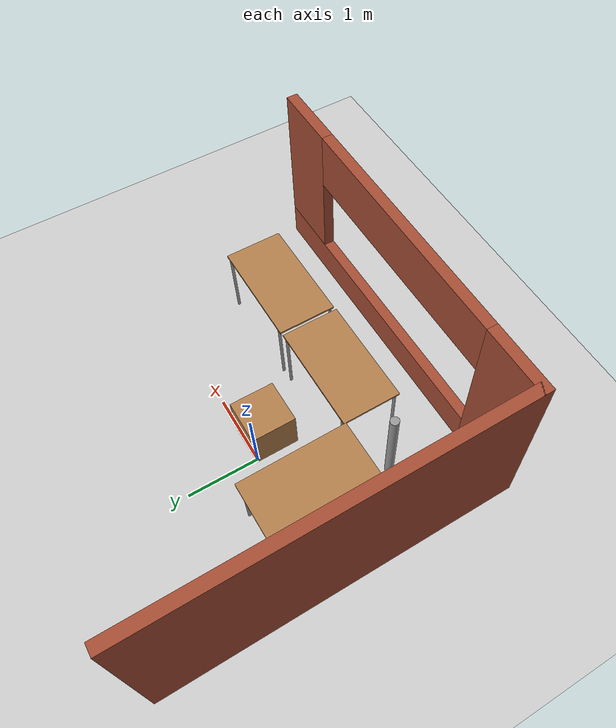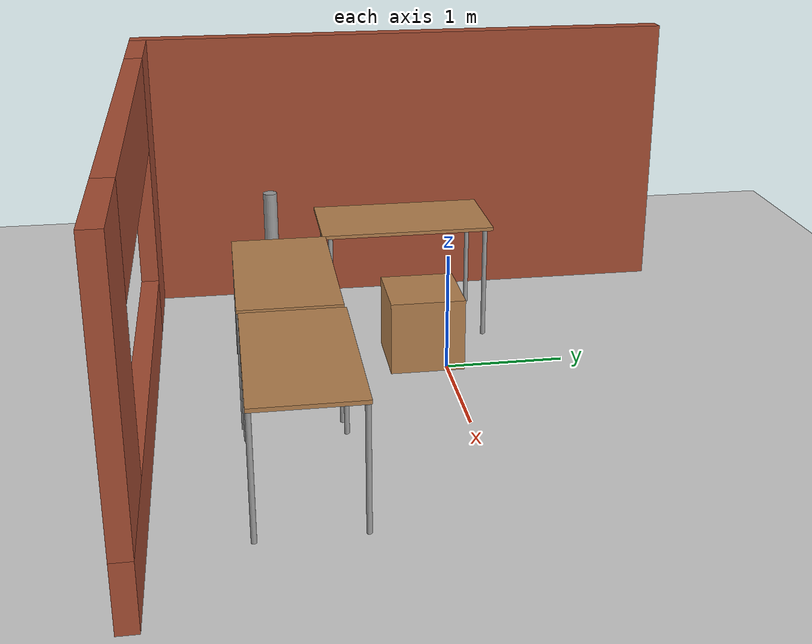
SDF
<sdf version="1.7">
 <world name="default">
  <light name="sun" type="directional">
   <pose>0 0 10 0 -0 0</pose>
   <diffuse>0.8 0.8 0.8 1</diffuse>
   <specular>0.2 0.2 0.2 1</specular>
   <attenuation>
    <range>1000</range>
    <constant>0.9</constant>
    <linear>0.01</linear>
    <quadratic>0.001</quadratic>
   </attenuation>
   <direction>-0.5 0.1 -0.9</direction>
   <spot><inner_angle>0</inner_angle><outer_angle>0</outer_angle><falloff>0</falloff></spot>
  </light>
  <model name="ground_plane">
   <static>1</static>
   <link name="link">
    <collision name="collision">
     <geometry><plane><normal>0 0 1</normal><size>100 100</size></plane></geometry>
     <surface>
      <contact><collide_bitmask>65535</collide_bitmask></contact>
      <friction><ode><mu>100</mu><mu2>50</mu2></ode></friction>
     </surface>
    </collision>
    <visual name="visual">
     <cast_shadows>0</cast_shadows>
     <geometry><plane><normal>0 0 1</normal><size>100 100</size></plane></geometry>
     <material>
      <script><uri>file://media/materials/scripts/gazebo.material</uri><name>Gazebo/Grey</name></script>
     </material>
    </visual>
   </link>
  </model>
  <gravity>0 0 -9.8</gravity>
  <magnetic_field>6e-06 2.3e-05 -4.2e-05</magnetic_field>
  <atmosphere type="adiabatic"/>
  <physics type="ode">
   <max_step_size>0.001</max_step_size>
   <real_time_factor>1</real_time_factor>
   <real_time_update_rate>1000</real_time_update_rate>
  </physics>
  <scene><ambient>0.4 0.4 0.4 1</ambient><background>0.7 0.7 0.7 1</background><shadows>1</shadows></scene>
  <spherical_coordinates>
   <surface_model>EARTH_WGS84</surface_model>
   <latitude_deg>0</latitude_deg>
   <longitude_deg>0</longitude_deg>
   <elevation>0</elevation>
   <heading_deg>0</heading_deg>
  </spherical_coordinates>
  <model name="TheLab2">
   <pose>0.593337 -0.093215 0 0 -0 0</pose>
   <link name="Wall_11">
    <collision name="Wall_11_Collision">
     <geometry><box><size>4.93725 0.15 2.5</size></box></geometry>
     <pose>0 0 1.25 0 -0 0</pose>
    </collision>
    <visual name="Wall_11_Visual">
     <pose>0 0 1.25 0 -0 0</pose>
     <geometry><box><size>4.93725 0.15 2.5</size></box></geometry>
     <material>
      <script><uri>file://media/materials/scripts/gazebo.material</uri><name>Gazebo/Bricks</name></script>
      <ambient>1 1 1 1</ambient>
     </material>
     <meta><layer>0</layer></meta>
    </visual>
    <pose>-2.55 0 0 0 -0 -1.5708</pose>
   </link>
   <link name="Wall_12">
    <pose>0 -2.39363 0 0 -0 0</pose>
    <visual name="Wall_12_Visual_0">
     <pose>-2.15232 0 1.25 0 -0 0</pose>
     <geometry><box><size>0.945349 0.15 2.5</size></box></geometry>
     <material>
      <script><uri>file://media/materials/scripts/gazebo.material</uri><name>Gazebo/Bricks</name></script>
      <ambient>1 1 1 1</ambient>
     </material>
     <meta><layer>0</layer></meta>
    </visual>
    <collision name="Wall_12_Collision_0">
     <geometry><box><size>0.945349 0.15 2.5</size></box></geometry>
     <pose>-2.15232 0 1.25 0 -0 0</pose>
    </collision>
    <visual name="Wall_12_Visual_1">
     <pose>0.472675 0 0.25 0 -0 0</pose>
     <geometry><box><size>4.30465 0.15 0.5</size></box></geometry>
     <material>
      <script><uri>file://media/materials/scripts/gazebo.material</uri><name>Gazebo/Bricks</name></script>
      <ambient>1 1 1 1</ambient>
     </material>
     <meta><layer>0</layer></meta>
    </visual>
    <collision name="Wall_12_Collision_1">
     <geometry><box><size>4.30465 0.15 0.5</size></box></geometry>
     <pose>0.472675 0 0.25 0 -0 0</pose>
    </collision>
    <visual name="Wall_12_Visual_2">
     <pose>2.17568 0 1.5 0 -0 0</pose>
     <geometry><box><size>0.898651 0.15 2</size></box></geometry>
     <material>
      <script><uri>file://media/materials/scripts/gazebo.material</uri><name>Gazebo/Bricks</name></script>
      <ambient>1 1 1 1</ambient>
     </material>
     <meta><layer>0</layer></meta>
    </visual>
    <collision name="Wall_12_Collision_2">
     <geometry><box><size>0.898651 0.15 2</size></box></geometry>
     <pose>2.17568 0 1.5 0 -0 0</pose>
    </collision>
    <visual name="Wall_12_Visual_3">
     <pose>0.023349 0 2.1 0 -0 0</pose>
     <geometry><box><size>3.406 0.15 0.8</size></box></geometry>
     <material>
      <script><uri>file://media/materials/scripts/gazebo.material</uri><name>Gazebo/Bricks</name></script>
      <ambient>1 1 1 1</ambient>
     </material>
     <meta><layer>0</layer></meta>
    </visual>
    <collision name="Wall_12_Collision_3">
     <geometry><box><size>3.406 0.15 0.8</size></box></geometry>
     <pose>0.023349 0 2.1 0 -0 0</pose>
    </collision>
   </link>
   <static>1</static>
  </model>
  <model name="table">
   <static>1</static>
   <link name="link">
    <collision name="surface">
     <pose>0 0 1 0 -0 0</pose>
     <geometry><box><size>1.5 0.8 0.03</size></box></geometry>
     <surface><friction><ode><mu>0.6</mu><mu2>0.6</mu2></ode></friction></surface>
    </collision>
    <visual name="visual1">
     <pose>0 0 1 0 -0 0</pose>
     <geometry><box><size>1.5 0.8 0.03</size></box></geometry>
     <material>
      <script><uri>file://media/materials/scripts/gazebo.material</uri><name>Gazebo/Wood</name></script>
     </material>
    </visual>
    <collision name="front_left_leg">
     <pose>0.68 0.38 0.5 0 -0 0</pose>
     <geometry><cylinder><radius>0.02</radius><length>1</length></cylinder></geometry>
    </collision>
    <visual name="front_left_leg">
     <pose>0.68 0.38 0.5 0 -0 0</pose>
     <geometry><cylinder><radius>0.02</radius><length>1</length></cylinder></geometry>
     <material>
      <script><uri>file://media/materials/scripts/gazebo.material</uri><name>Gazebo/Grey</name></script>
     </material>
    </visual>
    <collision name="front_right_leg">
     <pose>0.68 -0.38 0.5 0 -0 0</pose>
     <geometry><cylinder><radius>0.02</radius><length>1</length></cylinder></geometry>
    </collision>
    <visual name="front_right_leg">
     <pose>0.68 -0.38 0.5 0 -0 0</pose>
     <geometry><cylinder><radius>0.02</radius><length>1</length></cylinder></geometry>
     <material>
      <script><uri>file://media/materials/scripts/gazebo.material</uri><name>Gazebo/Grey</name></script>
     </material>
    </visual>
    <collision name="back_right_leg">
     <pose>-0.68 -0.38 0.5 0 -0 0</pose>
     <geometry><cylinder><radius>0.02</radius><length>1</length></cylinder></geometry>
    </collision>
    <visual name="back_right_leg">
     <pose>-0.68 -0.38 0.5 0 -0 0</pose>
     <geometry><cylinder><radius>0.02</radius><length>1</length></cylinder></geometry>
     <material>
      <script><uri>file://media/materials/scripts/gazebo.material</uri><name>Gazebo/Grey</name></script>
     </material>
    </visual>
    <collision name="back_left_leg">
     <pose>-0.68 0.38 0.5 0 -0 0</pose>
     <geometry><cylinder><radius>0.02</radius><length>1</length></cylinder></geometry>
    </collision>
    <visual name="back_left_leg">
     <pose>-0.68 0.38 0.5 0 -0 0</pose>
     <geometry><cylinder><radius>0.02</radius><length>1</length></cylinder></geometry>
     <material>
      <script><uri>file://media/materials/scripts/gazebo.material</uri><name>Gazebo/Grey</name></script>
     </material>
    </visual>
   </link>
   <pose>0.154999 -1.35636 0 0 -0 0</pose>
  </model>
  <model name="table_clone">
   <static>1</static>
   <link name="link">
    <collision name="surface">
     <pose>0 0 1 0 -0 0</pose>
     <geometry><box><size>1.5 0.8 0.03</size></box></geometry>
     <surface><friction><ode><mu>0.6</mu><mu2>0.6</mu2></ode></friction></surface>
    </collision>
    <visual name="visual1">
     <pose>0 0 1 0 -0 0</pose>
     <geometry><box><size>1.5 0.8 0.03</size></box></geometry>
     <material>
      <script><uri>file://media/materials/scripts/gazebo.material</uri><name>Gazebo/Wood</name></script>
     </material>
    </visual>
    <collision name="front_left_leg">
     <pose>0.68 0.38 0.5 0 -0 0</pose>
     <geometry><cylinder><radius>0.02</radius><length>1</length></cylinder></geometry>
    </collision>
    <visual name="front_left_leg">
     <pose>0.68 0.38 0.5 0 -0 0</pose>
     <geometry><cylinder><radius>0.02</radius><length>1</length></cylinder></geometry>
     <material>
      <script><uri>file://media/materials/scripts/gazebo.material</uri><name>Gazebo/Grey</name></script>
     </material>
    </visual>
    <collision name="front_right_leg">
     <pose>0.68 -0.38 0.5 0 -0 0</pose>
     <geometry><cylinder><radius>0.02</radius><length>1</length></cylinder></geometry>
    </collision>
    <visual name="front_right_leg">
     <pose>0.68 -0.38 0.5 0 -0 0</pose>
     <geometry><cylinder><radius>0.02</radius><length>1</length></cylinder></geometry>
     <material>
      <script><uri>file://media/materials/scripts/gazebo.material</uri><name>Gazebo/Grey</name></script>
     </material>
    </visual>
    <collision name="back_right_leg">
     <pose>-0.68 -0.38 0.5 0 -0 0</pose>
     <geometry><cylinder><radius>0.02</radius><length>1</length></cylinder></geometry>
    </collision>
    <visual name="back_right_leg">
     <pose>-0.68 -0.38 0.5 0 -0 0</pose>
     <geometry><cylinder><radius>0.02</radius><length>1</length></cylinder></geometry>
     <material>
      <script><uri>file://media/materials/scripts/gazebo.material</uri><name>Gazebo/Grey</name></script>
     </material>
    </visual>
    <collision name="back_left_leg">
     <pose>-0.68 0.38 0.5 0 -0 0</pose>
     <geometry><cylinder><radius>0.02</radius><length>1</length></cylinder></geometry>
    </collision>
    <visual name="back_left_leg">
     <pose>-0.68 0.38 0.5 0 -0 0</pose>
     <geometry><cylinder><radius>0.02</radius><length>1</length></cylinder></geometry>
     <material>
      <script><uri>file://media/materials/scripts/gazebo.material</uri><name>Gazebo/Grey</name></script>
     </material>
    </visual>
   </link>
   <pose>-1.00165 -0.236267 0 0 0 -1.5642</pose>
  </model>
  <model name="table_clone_0">
   <static>1</static>
   <link name="link">
    <collision name="surface">
     <pose>0 0 1 0 -0 0</pose>
     <geometry><box><size>1.5 0.8 0.03</size></box></geometry>
     <surface><friction><ode><mu>0.6</mu><mu2>0.6</mu2></ode></friction></surface>
    </collision>
    <visual name="visual1">
     <pose>0 0 1 0 -0 0</pose>
     <geometry><box><size>1.5 0.8 0.03</size></box></geometry>
     <material>
      <script><uri>file://media/materials/scripts/gazebo.material</uri><name>Gazebo/Wood</name></script>
     </material>
    </visual>
    <collision name="front_left_leg">
     <pose>0.68 0.38 0.5 0 -0 0</pose>
     <geometry><cylinder><radius>0.02</radius><length>1</length></cylinder></geometry>
    </collision>
    <visual name="front_left_leg">
     <pose>0.68 0.38 0.5 0 -0 0</pose>
     <geometry><cylinder><radius>0.02</radius><length>1</length></cylinder></geometry>
     <material>
      <script><uri>file://media/materials/scripts/gazebo.material</uri><name>Gazebo/Grey</name></script>
     </material>
    </visual>
    <collision name="front_right_leg">
     <pose>0.68 -0.38 0.5 0 -0 0</pose>
     <geometry><cylinder><radius>0.02</radius><length>1</length></cylinder></geometry>
    </collision>
    <visual name="front_right_leg">
     <pose>0.68 -0.38 0.5 0 -0 0</pose>
     <geometry><cylinder><radius>0.02</radius><length>1</length></cylinder></geometry>
     <material>
      <script><uri>file://media/materials/scripts/gazebo.material</uri><name>Gazebo/Grey</name></script>
     </material>
    </visual>
    <collision name="back_right_leg">
     <pose>-0.68 -0.38 0.5 0 -0 0</pose>
     <geometry><cylinder><radius>0.02</radius><length>1</length></cylinder></geometry>
    </collision>
    <visual name="back_right_leg">
     <pose>-0.68 -0.38 0.5 0 -0 0</pose>
     <geometry><cylinder><radius>0.02</radius><length>1</length></cylinder></geometry>
     <material>
      <script><uri>file://media/materials/scripts/gazebo.material</uri><name>Gazebo/Grey</name></script>
     </material>
    </visual>
    <collision name="back_left_leg">
     <pose>-0.68 0.38 0.5 0 -0 0</pose>
     <geometry><cylinder><radius>0.02</radius><length>1</length></cylinder></geometry>
    </collision>
    <visual name="back_left_leg">
     <pose>-0.68 0.38 0.5 0 -0 0</pose>
     <geometry><cylinder><radius>0.02</radius><length>1</length></cylinder></geometry>
     <material>
      <script><uri>file://media/materials/scripts/gazebo.material</uri><name>Gazebo/Grey</name></script>
     </material>
    </visual>
   </link>
   <pose>1.7023 -1.34463 0 0 -0 0</pose>
  </model>
  <model name="unit_box">
   <link name="link">
    <inertial>
     <mass>0.221864</mass>
     <inertia>
      <ixx>0.0127681</ixx>
      <ixy>0</ixy>
      <ixz>0</ixz>
      <iyy>0.014207</iyy>
      <iyz>0</iyz>
      <izz>0.0138381</izz>
     </inertia>
    </inertial>
    <visual name="visual">
     <geometry><box><size>0.6 0.6 0.6</size></box></geometry>
     <material>
      <script><name>Gazebo/Wood</name><uri>file://media/materials/scripts/gazebo.material</uri></script>
      <shader type="pixel"><normal_map>__default__</normal_map></shader>
      <ambient>0.3 0.3 0.3 1</ambient>
      <diffuse>0.7 0.7 0.7 1</diffuse>
      <specular>0.01 0.01 0.01 1</specular>
      <emissive>0 0 0 1</emissive>
     </material>
    </visual>
    <collision name="collision">
     <geometry><box><size>0.6 0.6 0.6</size></box></geometry>
     <surface>
      <friction>
       <ode><mu>1</mu><mu2>1</mu2><fdir1>0 0 0</fdir1><slip1>0</slip1><slip2>0</slip2></ode>
       <torsional>
        <coefficient>1</coefficient>
        <patch_radius>0</patch_radius>
        <surface_radius>0</surface_radius>
        <use_patch_radius>1</use_patch_radius>
        <ode><slip>0</slip></ode>
       </torsional>
      </friction>
      <bounce><restitution_coefficient>0</restitution_coefficient><threshold>1e+06</threshold></bounce>
      <contact>
       <collide_without_contact>0</collide_without_contact>
       <collide_without_contact_bitmask>1</collide_without_contact_bitmask>
       <collide_bitmask>1</collide_bitmask>
       <ode>
        <soft_cfm>0</soft_cfm>
        <soft_erp>0.2</soft_erp>
        <kp>1e+13</kp>
        <kd>1</kd>
        <max_vel>0.01</max_vel>
        <min_depth>0</min_depth>
       </ode>
       <bullet>
        <split_impulse>1</split_impulse>
        <split_impulse_penetration_threshold>-0.01</split_impulse_penetration_threshold>
        <soft_cfm>0</soft_cfm>
        <soft_erp>0.2</soft_erp>
        <kp>1e+13</kp>
        <kd>1</kd>
       </bullet>
      </contact>
     </surface>
    </collision>
   </link>
   <static>1</static>
   <pose>0.171545 -0.243238 0.5 0 -0 0</pose>
  </model>
  <model name="Suporte_Cam">
   <link name="link_0">
    <inertial>
     <mass>1</mass>
     <inertia><ixx>0.145833</ixx><ixy>0</ixy><ixz>0</ixz><iyy>0.145833</iyy><iyz>0</iyz><izz>0.125</izz></inertia>
    </inertial>
    <pose>-0 -3e-06 0 0 -0 0</pose>
    <visual name="visual">
     <geometry><cylinder><radius>0.06</radius><length>1.6</length></cylinder></geometry>
     <material>
      <lighting>1</lighting>
      <script><uri>file://media/materials/scripts/gazebo.material</uri><name>Gazebo/Grey</name></script>
      <shader type="pixel"><normal_map>__default__</normal_map></shader>
      <ambient>0.3 0.3 0.3 1</ambient>
      <diffuse>0.7 0.7 0.7 1</diffuse>
      <specular>0.01 0.01 0.01 1</specular>
      <emissive>0 0 0 1</emissive>
     </material>
    </visual>
    <collision name="collision">
     <geometry><cylinder><radius>0.5</radius><length>1</length></cylinder></geometry>
     <surface>
      <friction>
       <ode><mu>1</mu><mu2>1</mu2><fdir1>0 0 0</fdir1><slip1>0</slip1><slip2>0</slip2></ode>
       <torsional>
        <coefficient>1</coefficient>
        <patch_radius>0</patch_radius>
        <surface_radius>0</surface_radius>
        <use_patch_radius>1</use_patch_radius>
        <ode><slip>0</slip></ode>
       </torsional>
      </friction>
      <bounce><restitution_coefficient>0</restitution_coefficient><threshold>1e+06</threshold></bounce>
      <contact>
       <collide_without_contact>0</collide_without_contact>
       <collide_without_contact_bitmask>1</collide_without_contact_bitmask>
       <collide_bitmask>1</collide_bitmask>
       <ode>
        <soft_cfm>0</soft_cfm>
        <soft_erp>0.2</soft_erp>
        <kp>1e+13</kp>
        <kd>1</kd>
        <max_vel>0.01</max_vel>
        <min_depth>0</min_depth>
       </ode>
       <bullet>
        <split_impulse>1</split_impulse>
        <split_impulse_penetration_threshold>-0.01</split_impulse_penetration_threshold>
        <soft_cfm>0</soft_cfm>
        <soft_erp>0.2</soft_erp>
        <kp>1e+13</kp>
        <kd>1</kd>
       </bullet>
      </contact>
     </surface>
    </collision>
   </link>
   <static>0</static>
   <pose>-0.996496 -1.39899 0.5 0 -0 0</pose>
  </model>
 </world>
</sdf>
